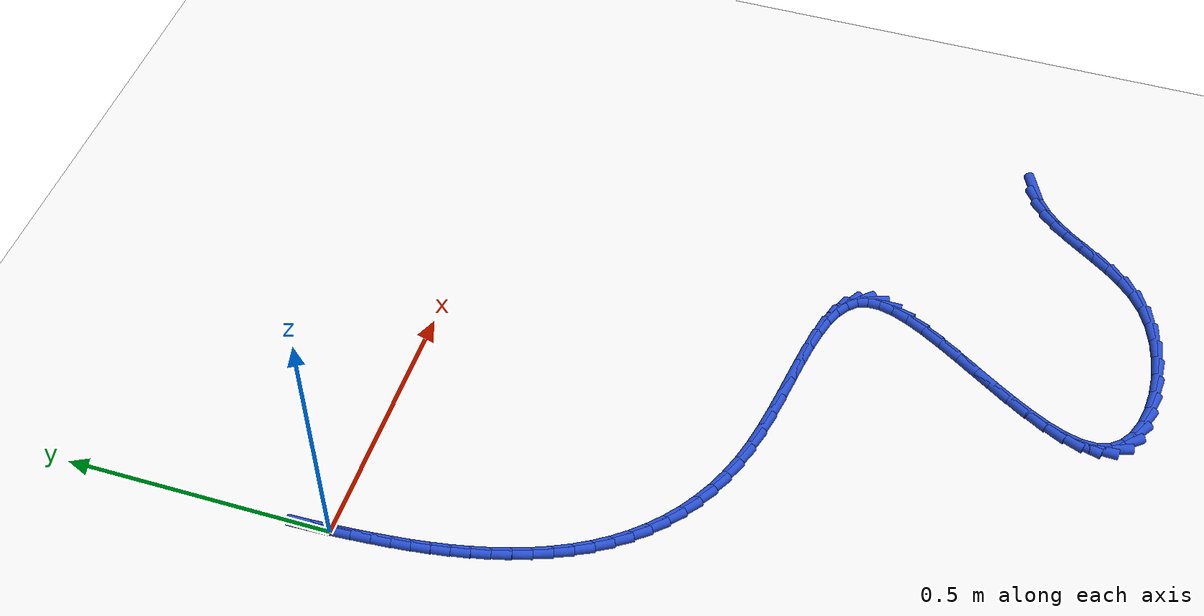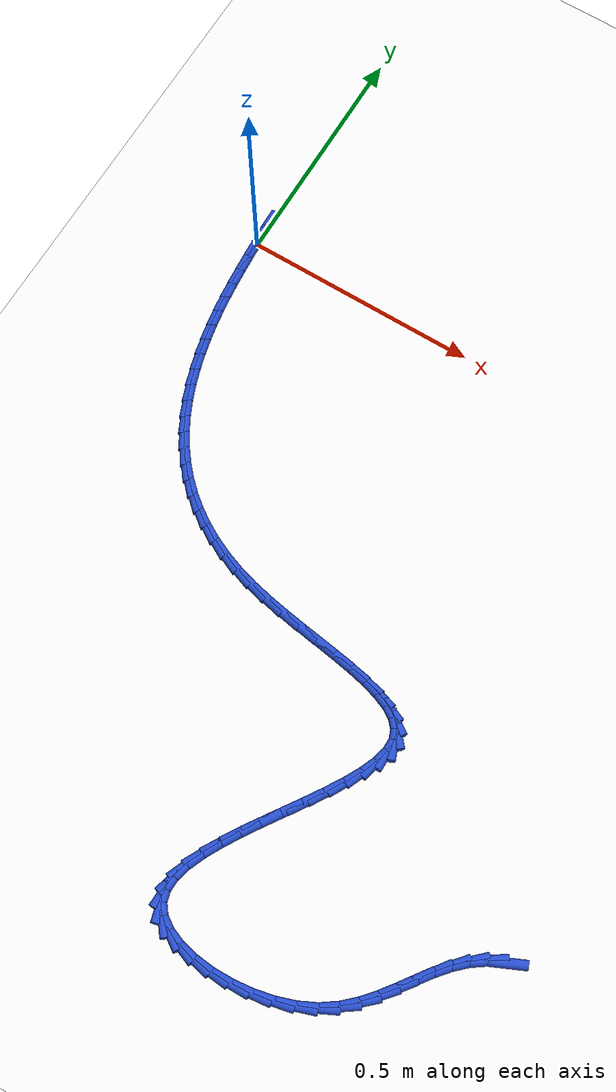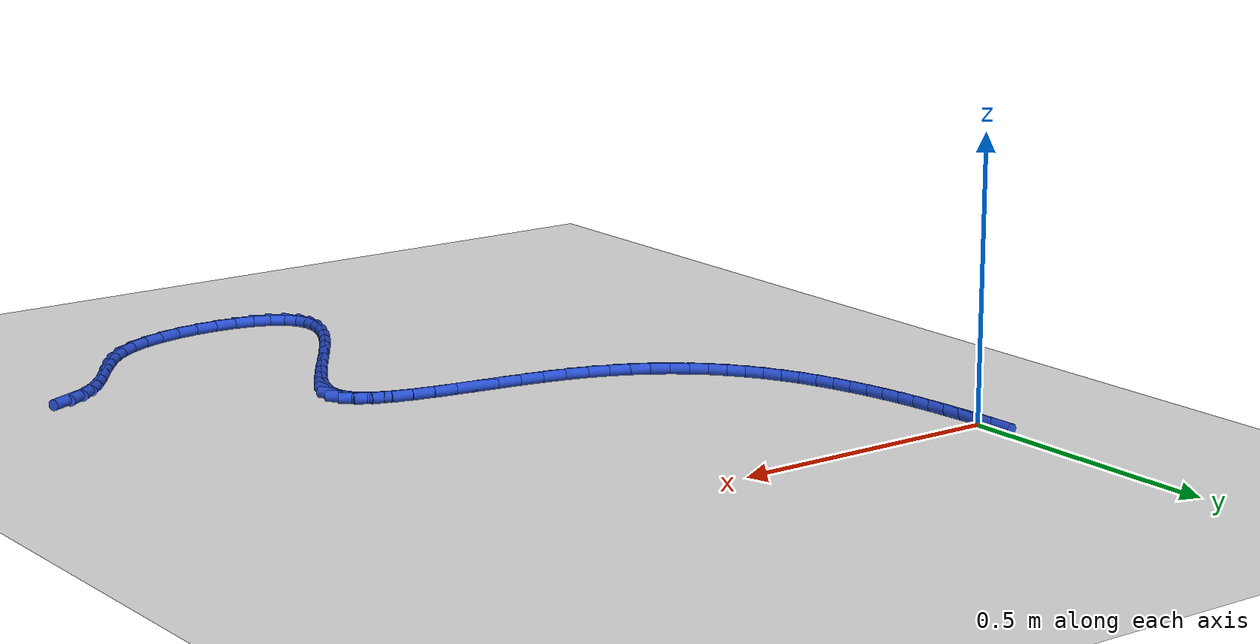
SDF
<sdf version="1.6">
 <world name="default">
  <model name="ground_plane">
   <static>1</static>
   <link name="link">
    <collision name="collision">
     <geometry><plane><normal>0 0 1</normal><size>100 100</size></plane></geometry>
     <surface><friction><ode><mu>100</mu><mu2>50</mu2></ode></friction></surface>
    </collision>
    <visual name="visual">
     <cast_shadows>0</cast_shadows>
     <geometry><plane><normal>0 0 1</normal><size>100 100</size></plane></geometry>
     <material>
      <script><uri>file://media/materials/scripts/gazebo.material</uri><name>Gazebo/WhiteGlow</name></script>
     </material>
    </visual>
   </link>
  </model>
  <model name="line">
   <link name="link_0">
    <pose>4.5536491244391186e-17 -6.938893903907228e-18 0.01 0 1.57 -1.516350426905177</pose>
    <collision name="collision">
     <geometry><cylinder><radius>0.01</radius><length>0.08</length></cylinder></geometry>
    </collision>
    <visual name="visual">
     <material>
      <script><name>Gazebo/Blue</name><uri>file://media/materials/scripts/gazebo.material</uri></script>
     </material>
     <geometry><cylinder><radius>0.01</radius><length>0.08</length></cylinder></geometry>
    </visual>
   </link>
   <link name="link_1">
    <pose>-0.0020344990138612793 0.03733041962966487 0.01 0 1.57 -1.5432978315503292</pose>
    <collision name="collision">
     <geometry><cylinder><radius>0.01</radius><length>0.08</length></cylinder></geometry>
    </collision>
    <visual name="visual">
     <material>
      <script><name>Gazebo/Blue</name><uri>file://media/materials/scripts/gazebo.material</uri></script>
     </material>
     <geometry><cylinder><radius>0.01</radius><length>0.08</length></cylinder></geometry>
    </visual>
   </link>
   <link name="link_220">
    <pose>1.1746658661336546 -1.0184772821129071 0.01 0 1.57 0.42981412778938677</pose>
    <collision name="collision">
     <geometry><cylinder><radius>0.01</radius><length>0.08</length></cylinder></geometry>
    </collision>
    <visual name="visual">
     <material>
      <script><name>Gazebo/Blue</name><uri>file://media/materials/scripts/gazebo.material</uri></script>
     </material>
     <geometry><cylinder><radius>0.01</radius><length>0.08</length></cylinder></geometry>
    </visual>
   </link>
   <link name="link_221">
    <pose>1.1427832902395163 -1.0330921297746105 0.01 0 1.57 0.6200325860546971</pose>
    <collision name="collision">
     <geometry><cylinder><radius>0.01</radius><length>0.08</length></cylinder></geometry>
    </collision>
    <visual name="visual">
     <material>
      <script><name>Gazebo/Blue</name><uri>file://media/materials/scripts/gazebo.material</uri></script>
     </material>
     <geometry><cylinder><radius>0.01</radius><length>0.08</length></cylinder></geometry>
    </visual>
   </link>
   <link name="link_222">
    <pose>1.115253894360986 -1.0527469677544712 0.01 0 1.57 0.7728745072608176</pose>
    <collision name="collision">
     <geometry><cylinder><radius>0.01</radius><length>0.08</length></cylinder></geometry>
    </collision>
    <visual name="visual">
     <material>
      <script><name>Gazebo/Blue</name><uri>file://media/materials/scripts/gazebo.material</uri></script>
     </material>
     <geometry><cylinder><radius>0.01</radius><length>0.08</length></cylinder></geometry>
    </visual>
   </link>
   <link name="link_223">
    <pose>1.0910106829512283 -1.0763904315548454 0.01 0 1.57 0.8788750984737931</pose>
    <collision name="collision">
     <geometry><cylinder><radius>0.01</radius><length>0.08</length></cylinder></geometry>
    </collision>
    <visual name="visual">
     <material>
      <script><name>Gazebo/Blue</name><uri>file://media/materials/scripts/gazebo.material</uri></script>
     </material>
     <geometry><cylinder><radius>0.01</radius><length>0.08</length></cylinder></geometry>
    </visual>
   </link>
   <link name="link_224">
    <pose>1.0689866604634077 -1.102971156678089 0.01 0 1.57 0.9381318744191648</pose>
    <collision name="collision">
     <geometry><cylinder><radius>0.01</radius><length>0.08</length></cylinder></geometry>
    </collision>
    <visual name="visual">
     <material>
      <script><name>Gazebo/Blue</name><uri>file://media/materials/scripts/gazebo.material</uri></script>
     </material>
     <geometry><cylinder><radius>0.01</radius><length>0.08</length></cylinder></geometry>
    </visual>
   </link>
   <link name="link_225">
    <pose>1.048114831350689 -1.1314377786265581 0.01 0 1.57 0.95378054812409</pose>
    <collision name="collision">
     <geometry><cylinder><radius>0.01</radius><length>0.08</length></cylinder></geometry>
    </collision>
    <visual name="visual">
     <material>
      <script><name>Gazebo/Blue</name><uri>file://media/materials/scripts/gazebo.material</uri></script>
     </material>
     <geometry><cylinder><radius>0.01</radius><length>0.08</length></cylinder></geometry>
    </visual>
   </link>
   <link name="link_226">
    <pose>1.0273282000662358 -1.1607389329026085 0.01 0 1.57 0.9282820474784721</pose>
    <collision name="collision">
     <geometry><cylinder><radius>0.01</radius><length>0.08</length></cylinder></geometry>
    </collision>
    <visual name="visual">
     <material>
      <script><name>Gazebo/Blue</name><uri>file://media/materials/scripts/gazebo.material</uri></script>
     </material>
     <geometry><cylinder><radius>0.01</radius><length>0.08</length></cylinder></geometry>
    </visual>
   </link>
   <link name="link_227">
    <pose>1.0055597710632138 -1.1898232550085968 0.01 0 1.57 0.8626919393653397</pose>
    <collision name="collision">
     <geometry><cylinder><radius>0.01</radius><length>0.08</length></cylinder></geometry>
    </collision>
    <visual name="visual">
     <material>
      <script><name>Gazebo/Blue</name><uri>file://media/materials/scripts/gazebo.material</uri></script>
     </material>
     <geometry><cylinder><radius>0.01</radius><length>0.08</length></cylinder></geometry>
    </visual>
   </link>
   <link name="link_228">
    <pose>0.9817425487947873 -1.2176393804468788 0.01 0 1.57 0.7580073721109306</pose>
    <collision name="collision">
     <geometry><cylinder><radius>0.01</radius><length>0.08</length></cylinder></geometry>
    </collision>
    <visual name="visual">
     <material>
      <script><name>Gazebo/Blue</name><uri>file://media/materials/scripts/gazebo.material</uri></script>
     </material>
     <geometry><cylinder><radius>0.01</radius><length>0.08</length></cylinder></geometry>
    </visual>
   </link>
   <link name="link_229">
    <pose>0.9548095377141208 -1.243135944719811 0.01 0 1.57 0.6181231570834209</pose>
    <collision name="collision">
     <geometry><cylinder><radius>0.01</radius><length>0.08</length></cylinder></geometry>
    </collision>
    <visual name="visual">
     <material>
      <script><name>Gazebo/Blue</name><uri>file://media/materials/scripts/gazebo.material</uri></script>
     </material>
     <geometry><cylinder><radius>0.01</radius><length>0.08</length></cylinder></geometry>
    </visual>
   </link>
   <link name="link_230">
    <pose>0.9236938849033245 -1.265261644098221 0.01 0 1.57 0.4635899827765623</pose>
    <collision name="collision">
     <geometry><cylinder><radius>0.01</radius><length>0.08</length></cylinder></geometry>
    </collision>
    <visual name="visual">
     <material>
      <script><name>Gazebo/Blue</name><uri>file://media/materials/scripts/gazebo.material</uri></script>
     </material>
     <geometry><cylinder><radius>0.01</radius><length>0.08</length></cylinder></geometry>
    </visual>
   </link>
   <link name="link_231">
    <pose>0.8878432404863427 -1.2831843839595214 0.01 0 1.57 0.3318450733381924</pose>
    <collision name="collision">
     <geometry><cylinder><radius>0.01</radius><length>0.08</length></cylinder></geometry>
    </collision>
    <visual name="visual">
     <material>
      <script><name>Gazebo/Blue</name><uri>file://media/materials/scripts/gazebo.material</uri></script>
     </material>
     <geometry><cylinder><radius>0.01</radius><length>0.08</length></cylinder></geometry>
    </visual>
   </link>
   <link name="link_232">
    <pose>0.8483765229039404 -1.2967841300671765 0.01 0 1.57 0.21983674136363643</pose>
    <collision name="collision">
     <geometry><cylinder><radius>0.01</radius><length>0.08</length></cylinder></geometry>
    </collision>
    <visual name="visual">
     <material>
      <script><name>Gazebo/Blue</name><uri>file://media/materials/scripts/gazebo.material</uri></script>
     </material>
     <geometry><cylinder><radius>0.01</radius><length>0.08</length></cylinder></geometry>
    </visual>
   </link>
   <link name="link_233">
    <pose>0.8067514077498625 -1.3060851790181263 0.01 0 1.57 0.11820709471856827</pose>
    <collision name="collision">
     <geometry><cylinder><radius>0.01</radius><length>0.08</length></cylinder></geometry>
    </collision>
    <visual name="visual">
     <material>
      <script><name>Gazebo/Blue</name><uri>file://media/materials/scripts/gazebo.material</uri></script>
     </material>
     <geometry><cylinder><radius>0.01</radius><length>0.08</length></cylinder></geometry>
    </visual>
   </link>
   <link name="link_234">
    <pose>0.7644255706178503 -1.311111827409309 0.01 0 1.57 0.018678733940590667</pose>
    <collision name="collision">
     <geometry><cylinder><radius>0.01</radius><length>0.08</length></cylinder></geometry>
    </collision>
    <visual name="visual">
     <material>
      <script><name>Gazebo/Blue</name><uri>file://media/materials/scripts/gazebo.material</uri></script>
     </material>
     <geometry><cylinder><radius>0.01</radius><length>0.08</length></cylinder></geometry>
    </visual>
   </link>
   <link name="link_235">
    <pose>0.7228566871016489 -1.3118883718376653 0.01 0 1.57 -0.08742310522896354</pose>
    <collision name="collision">
     <geometry><cylinder><radius>0.01</radius><length>0.08</length></cylinder></geometry>
    </collision>
    <visual name="visual">
     <material>
      <script><name>Gazebo/Blue</name><uri>file://media/materials/scripts/gazebo.material</uri></script>
     </material>
     <geometry><cylinder><radius>0.01</radius><length>0.08</length></cylinder></geometry>
    </visual>
   </link>
   <link name="link_236">
    <pose>0.6835024327950021 -1.3084391089001337 0.01 0 1.57 -0.21121770342048543</pose>
    <collision name="collision">
     <geometry><cylinder><radius>0.01</radius><length>0.08</length></cylinder></geometry>
    </collision>
    <visual name="visual">
     <material>
      <script><name>Gazebo/Blue</name><uri>file://media/materials/scripts/gazebo.material</uri></script>
     </material>
     <geometry><cylinder><radius>0.01</radius><length>0.08</length></cylinder></geometry>
    </visual>
   </link>
   <link name="link_237">
    <pose>0.6478204832916536 -1.3007883351936542 0.01 0 1.57 -0.3693740553438841</pose>
    <collision name="collision">
     <geometry><cylinder><radius>0.01</radius><length>0.08</length></cylinder></geometry>
    </collision>
    <visual name="visual">
     <material>
      <script><name>Gazebo/Blue</name><uri>file://media/materials/scripts/gazebo.material</uri></script>
     </material>
     <geometry><cylinder><radius>0.01</radius><length>0.08</length></cylinder></geometry>
    </visual>
   </link>
   <link name="link_238">
    <pose>0.6172685141853474 -1.288960347315166 0.01 0 1.57 -0.588138275045599</pose>
    <collision name="collision">
     <geometry><cylinder><radius>0.01</radius><length>0.08</length></cylinder></geometry>
    </collision>
    <visual name="visual">
     <material>
      <script><name>Gazebo/Blue</name><uri>file://media/materials/scripts/gazebo.material</uri></script>
     </material>
     <geometry><cylinder><radius>0.01</radius><length>0.08</length></cylinder></geometry>
    </visual>
   </link>
   <link name="link_239">
    <pose>0.5933042010698273 -1.272979441861609 0.01 0 1.57 -0.9011483518496011</pose>
    <collision name="collision">
     <geometry><cylinder><radius>0.01</radius><length>0.08</length></cylinder></geometry>
    </collision>
    <visual name="visual">
     <material>
      <script><name>Gazebo/Blue</name><uri>file://media/materials/scripts/gazebo.material</uri></script>
     </material>
     <geometry><cylinder><radius>0.01</radius><length>0.08</length></cylinder></geometry>
    </visual>
   </link>
   <link name="link_240">
    <pose>0.5773840454984881 -1.2528701447680108 0.01 0 1.57 -1.2857735743931757</pose>
    <collision name="collision">
     <geometry><cylinder><radius>0.01</radius><length>0.08</length></cylinder></geometry>
    </collision>
    <visual name="visual">
     <material>
      <script><name>Gazebo/Blue</name><uri>file://media/materials/scripts/gazebo.material</uri></script>
     </material>
     <geometry><cylinder><radius>0.01</radius><length>0.08</length></cylinder></geometry>
    </visual>
   </link>
   <link name="link_241">
    <pose>0.5703261216818103 -1.2287816929359083 0.01 0 1.57 1.5371134892160654</pose>
    <collision name="collision">
     <geometry><cylinder><radius>0.01</radius><length>0.08</length></cylinder></geometry>
    </collision>
    <visual name="visual">
     <material>
      <script><name>Gazebo/Blue</name><uri>file://media/materials/scripts/gazebo.material</uri></script>
     </material>
     <geometry><cylinder><radius>0.01</radius><length>0.08</length></cylinder></geometry>
    </visual>
   </link>
   <link name="link_242">
    <pose>0.5712557051690983 -1.201193996066931 0.01 0 1.57 1.3219169478094985</pose>
    <collision name="collision">
     <geometry><cylinder><radius>0.01</radius><length>0.08</length></cylinder></geometry>
    </collision>
    <visual name="visual">
     <material>
      <script><name>Gazebo/Blue</name><uri>file://media/materials/scripts/gazebo.material</uri></script>
     </material>
     <geometry><cylinder><radius>0.01</radius><length>0.08</length></cylinder></geometry>
    </visual>
   </link>
   <link name="link_243">
    <pose>0.5790206669384446 -1.1706411523190365 0.01 0 1.57 1.183652066104977</pose>
    <collision name="collision">
     <geometry><cylinder><radius>0.01</radius><length>0.08</length></cylinder></geometry>
    </collision>
    <visual name="visual">
     <material>
      <script><name>Gazebo/Blue</name><uri>file://media/materials/scripts/gazebo.material</uri></script>
     </material>
     <geometry><cylinder><radius>0.01</radius><length>0.08</length></cylinder></geometry>
    </visual>
   </link>
   <link name="link_244">
    <pose>0.5924688779679423 -1.1376572598501824 0.01 0 1.57 1.0948652347971406</pose>
    <collision name="collision">
     <geometry><cylinder><radius>0.01</radius><length>0.08</length></cylinder></geometry>
    </collision>
    <visual name="visual">
     <material>
      <script><name>Gazebo/Blue</name><uri>file://media/materials/scripts/gazebo.material</uri></script>
     </material>
     <geometry><cylinder><radius>0.01</radius><length>0.08</length></cylinder></geometry>
    </visual>
   </link>
   <link name="link_245">
    <pose>0.6104482092356841 -1.1027764168183265 0.01 0 1.57 1.038283411546175</pose>
    <collision name="collision">
     <geometry><cylinder><radius>0.01</radius><length>0.08</length></cylinder></geometry>
    </collision>
    <visual name="visual">
     <material>
      <script><name>Gazebo/Blue</name><uri>file://media/materials/scripts/gazebo.material</uri></script>
     </material>
     <geometry><cylinder><radius>0.01</radius><length>0.08</length></cylinder></geometry>
    </visual>
   </link>
   <link name="link_246">
    <pose>0.6318065317197631 -1.0665327213814257 0.01 0 1.57 1.0041894991324605</pose>
    <collision name="collision">
     <geometry><cylinder><radius>0.01</radius><length>0.08</length></cylinder></geometry>
    </collision>
    <visual name="visual">
     <material>
      <script><name>Gazebo/Blue</name><uri>file://media/materials/scripts/gazebo.material</uri></script>
     </material>
     <geometry><cylinder><radius>0.01</radius><length>0.08</length></cylinder></geometry>
    </visual>
   </link>
   <link name="link_247">
    <pose>0.6553917163982722 -1.0294602716974381 0.01 0 1.57 0.9874675375858653</pose>
    <collision name="collision">
     <geometry><cylinder><radius>0.01</radius><length>0.08</length></cylinder></geometry>
    </collision>
    <visual name="visual">
     <material>
      <script><name>Gazebo/Blue</name><uri>file://media/materials/scripts/gazebo.material</uri></script>
     </material>
     <geometry><cylinder><radius>0.01</radius><length>0.08</length></cylinder></geometry>
    </visual>
   </link>
   <link name="link_248">
    <pose>0.6800516342493033 -0.9920931659243223 0.01 0 1.57 0.985956388616077</pose>
    <collision name="collision">
     <geometry><cylinder><radius>0.01</radius><length>0.08</length></cylinder></geometry>
    </collision>
    <visual name="visual">
     <material>
      <script><name>Gazebo/Blue</name><uri>file://media/materials/scripts/gazebo.material</uri></script>
     </material>
     <geometry><cylinder><radius>0.01</radius><length>0.08</length></cylinder></geometry>
    </visual>
   </link>
   <link name="link_249">
    <pose>0.7046341562509508 -0.9549655022200326 0.01 0 1.57 0.9997997447959651</pose>
    <collision name="collision">
     <geometry><cylinder><radius>0.01</radius><length>0.08</length></cylinder></geometry>
    </collision>
    <visual name="visual">
     <material>
      <script><name>Gazebo/Blue</name><uri>file://media/materials/scripts/gazebo.material</uri></script>
     </material>
     <geometry><cylinder><radius>0.01</radius><length>0.08</length></cylinder></geometry>
    </visual>
   </link>
   <link name="link_250">
    <pose>0.7279871533813068 -0.9186113787425283 0.01 0 1.57 1.031564074763815</pose>
    <collision name="collision">
     <geometry><cylinder><radius>0.01</radius><length>0.08</length></cylinder></geometry>
    </collision>
    <visual name="visual">
     <material>
      <script><name>Gazebo/Blue</name><uri>file://media/materials/scripts/gazebo.material</uri></script>
     </material>
     <geometry><cylinder><radius>0.01</radius><length>0.08</length></cylinder></geometry>
    </visual>
   </link>
   <link name="link_251">
    <pose>0.7489584966184646 -0.8835648936497665 0.01 0 1.57 1.087229698293783</pose>
    <collision name="collision">
     <geometry><cylinder><radius>0.01</radius><length>0.08</length></cylinder></geometry>
    </collision>
    <visual name="visual">
     <material>
      <script><name>Gazebo/Blue</name><uri>file://media/materials/scripts/gazebo.material</uri></script>
     </material>
     <geometry><cylinder><radius>0.01</radius><length>0.08</length></cylinder></geometry>
    </visual>
   </link>
   <link name="link_252">
    <pose>0.7663960569405166 -0.8503601450997049 0.01 0 1.57 1.1785986417225092</pose>
    <collision name="collision">
     <geometry><cylinder><radius>0.01</radius><length>0.08</length></cylinder></geometry>
    </collision>
    <visual name="visual">
     <material>
      <script><name>Gazebo/Blue</name><uri>file://media/materials/scripts/gazebo.material</uri></script>
     </material>
     <geometry><cylinder><radius>0.01</radius><length>0.08</length></cylinder></geometry>
    </visual>
   </link>
   <link name="link_253">
    <pose>0.779147705325556 -0.819531231250301 0.01 0 1.57 1.3280484748059462</pose>
    <collision name="collision">
     <geometry><cylinder><radius>0.01</radius><length>0.08</length></cylinder></geometry>
    </collision>
    <visual name="visual">
     <material>
      <script><name>Gazebo/Blue</name><uri>file://media/materials/scripts/gazebo.material</uri></script>
     </material>
     <geometry><cylinder><radius>0.01</radius><length>0.08</length></cylinder></geometry>
    </visual>
   </link>
   <link name="link_254">
    <pose>0.7860613127516753 -0.7916122502595122 0.01 0 1.57 -1.5676681363368228</pose>
    <collision name="collision">
     <geometry><cylinder><radius>0.01</radius><length>0.08</length></cylinder></geometry>
    </collision>
    <visual name="visual">
     <material>
      <script><name>Gazebo/Blue</name><uri>file://media/materials/scripts/gazebo.material</uri></script>
     </material>
     <geometry><cylinder><radius>0.01</radius><length>0.08</length></cylinder></geometry>
    </visual>
   </link>
   <link name="link_255">
    <pose>0.7859847501969678 -0.7671373002852957 0.01 0 1.57 -1.2017244000804317</pose>
    <collision name="collision">
     <geometry><cylinder><radius>0.01</radius><length>0.08</length></cylinder></geometry>
    </collision>
    <visual name="visual">
     <material>
      <script><name>Gazebo/Blue</name><uri>file://media/materials/scripts/gazebo.material</uri></script>
     </material>
     <geometry><cylinder><radius>0.01</radius><length>0.08</length></cylinder></geometry>
    </visual>
   </link>
   <link name="link_256">
    <pose>0.7780084415034133 -0.7465158055303517 0.01 0 1.57 -0.8343913940553751</pose>
    <collision name="collision">
     <geometry><cylinder><radius>0.01</radius><length>0.08</length></cylinder></geometry>
    </collision>
    <visual name="visual">
     <material>
      <script><name>Gazebo/Blue</name><uri>file://media/materials/scripts/gazebo.material</uri></script>
     </material>
     <geometry><cylinder><radius>0.01</radius><length>0.08</length></cylinder></geometry>
    </visual>
   </link>
   <link name="link_257">
    <pose>0.7625572563443402 -0.7294712752293849 0.01 0 1.57 -0.565120895670289</pose>
    <collision name="collision">
     <geometry><cylinder><radius>0.01</radius><length>0.08</length></cylinder></geometry>
    </collision>
    <visual name="visual">
     <material>
      <script><name>Gazebo/Blue</name><uri>file://media/materials/scripts/gazebo.material</uri></script>
     </material>
     <geometry><cylinder><radius>0.01</radius><length>0.08</length></cylinder></geometry>
    </visual>
   </link>
   <link name="link_258">
    <pose>0.7405125447939668 -0.7154925843350528 0.01 0 1.57 -0.39045421343548375</pose>
    <collision name="collision">
     <geometry><cylinder><radius>0.01</radius><length>0.08</length></cylinder></geometry>
    </collision>
    <visual name="visual">
     <material>
      <script><name>Gazebo/Blue</name><uri>file://media/materials/scripts/gazebo.material</uri></script>
     </material>
     <geometry><cylinder><radius>0.01</radius><length>0.08</length></cylinder></geometry>
    </visual>
   </link>
   <link name="link_259">
    <pose>0.7127560558123968 -0.7040684027697367 0.01 0 1.57 -0.2803006529759465</pose>
    <collision name="collision">
     <geometry><cylinder><radius>0.01</radius><length>0.08</length></cylinder></geometry>
    </collision>
    <visual name="visual">
     <material>
      <script><name>Gazebo/Blue</name><uri>file://media/materials/scripts/gazebo.material</uri></script>
     </material>
     <geometry><cylinder><radius>0.01</radius><length>0.08</length></cylinder></geometry>
    </visual>
   </link>
   <link name="link_260">
    <pose>0.6801695383597333 -0.694687400455817 0.01 0 1.57 -0.21162367842931346</pose>
    <collision name="collision">
     <geometry><cylinder><radius>0.01</radius><length>0.08</length></cylinder></geometry>
    </collision>
    <visual name="visual">
     <material>
      <script><name>Gazebo/Blue</name><uri>file://media/materials/scripts/gazebo.material</uri></script>
     </material>
     <geometry><cylinder><radius>0.01</radius><length>0.08</length></cylinder></geometry>
    </visual>
   </link>
   <link name="link_261">
    <pose>0.6436347413960795 -0.6868382473156748 0.01 0 1.57 -0.17075529440356832</pose>
    <collision name="collision">
     <geometry><cylinder><radius>0.01</radius><length>0.08</length></cylinder></geometry>
    </collision>
    <visual name="visual">
     <material>
      <script><name>Gazebo/Blue</name><uri>file://media/materials/scripts/gazebo.material</uri></script>
     </material>
     <geometry><cylinder><radius>0.01</radius><length>0.08</length></cylinder></geometry>
    </visual>
   </link>
   <link name="link_262">
    <pose>0.6040334138815386 -0.6800096132716906 0.01 0 1.57 -0.15009574635270578</pose>
    <collision name="collision">
     <geometry><cylinder><radius>0.01</radius><length>0.08</length></cylinder></geometry>
    </collision>
    <visual name="visual">
     <material>
      <script><name>Gazebo/Blue</name><uri>file://media/materials/scripts/gazebo.material</uri></script>
     </material>
     <geometry><cylinder><radius>0.01</radius><length>0.08</length></cylinder></geometry>
    </visual>
   </link>
   <link name="link_263">
    <pose>0.5622473047762142 -0.6736901682462454 0.01 0 1.57 -0.14567030359148098</pose>
    <collision name="collision">
     <geometry><cylinder><radius>0.01</radius><length>0.08</length></cylinder></geometry>
    </collision>
    <visual name="visual">
     <material>
      <script><name>Gazebo/Blue</name><uri>file://media/materials/scripts/gazebo.material</uri></script>
     </material>
     <geometry><cylinder><radius>0.01</radius><length>0.08</length></cylinder></geometry>
    </visual>
   </link>
   <link name="link_264">
    <pose>0.5191581630402093 -0.6673685821617201 0.01 0 1.57 -0.1558167184308139</pose>
    <collision name="collision">
     <geometry><cylinder><radius>0.01</radius><length>0.08</length></cylinder></geometry>
    </collision>
    <visual name="visual">
     <material>
      <script><name>Gazebo/Blue</name><uri>file://media/materials/scripts/gazebo.material</uri></script>
     </material>
     <geometry><cylinder><radius>0.01</radius><length>0.08</length></cylinder></geometry>
    </visual>
   </link>
   <link name="link_265">
    <pose>0.4756477376336286 -0.6605335249404958 0.01 0 1.57 -0.1805862711081876</pose>
    <collision name="collision">
     <geometry><cylinder><radius>0.01</radius><length>0.08</length></cylinder></geometry>
    </collision>
    <visual name="visual">
     <material>
      <script><name>Gazebo/Blue</name><uri>file://media/materials/scripts/gazebo.material</uri></script>
     </material>
     <geometry><cylinder><radius>0.01</radius><length>0.08</length></cylinder></geometry>
    </visual>
   </link>
   <link name="link_266">
    <pose>0.4325977775165725 -0.6526736665049526 0.01 0 1.57 -0.2215825028873616</pose>
    <collision name="collision">
     <geometry><cylinder><radius>0.01</radius><length>0.08</length></cylinder></geometry>
    </collision>
    <visual name="visual">
     <material>
      <script><name>Gazebo/Blue</name><uri>file://media/materials/scripts/gazebo.material</uri></script>
     </material>
     <geometry><cylinder><radius>0.01</radius><length>0.08</length></cylinder></geometry>
    </visual>
   </link>
   <link name="link_267">
    <pose>0.3908900316491457 -0.6432776767774716 0.01 0 1.57 -0.2814217121672432</pose>
    <collision name="collision">
     <geometry><cylinder><radius>0.01</radius><length>0.08</length></cylinder></geometry>
    </collision>
    <visual name="visual">
     <material>
      <script><name>Gazebo/Blue</name><uri>file://media/materials/scripts/gazebo.material</uri></script>
     </material>
     <geometry><cylinder><radius>0.01</radius><length>0.08</length></cylinder></geometry>
    </visual>
   </link>
   <link name="link_268">
    <pose>0.35137452981468403 -0.6318539733478189 0.01 0 1.57 -0.35320808313300256</pose>
    <collision name="collision">
     <geometry><cylinder><radius>0.01</radius><length>0.08</length></cylinder></geometry>
    </collision>
    <visual name="visual">
     <material>
      <script><name>Gazebo/Blue</name><uri>file://media/materials/scripts/gazebo.material</uri></script>
     </material>
     <geometry><cylinder><radius>0.01</radius><length>0.08</length></cylinder></geometry>
    </visual>
   </link>
   <link name="link_269">
    <pose>0.3144004415418232 -0.6182227984722349 0.01 0 1.57 -0.4289239694837757</pose>
    <collision name="collision">
     <geometry><cylinder><radius>0.01</radius><length>0.08</length></cylinder></geometry>
    </collision>
    <visual name="visual">
     <material>
      <script><name>Gazebo/Blue</name><uri>file://media/materials/scripts/gazebo.material</uri></script>
     </material>
     <geometry><cylinder><radius>0.01</radius><length>0.08</length></cylinder></geometry>
    </visual>
   </link>
   <link name="link_270">
    <pose>0.2799174919665505 -0.6024530797704777 0.01 0 1.57 -0.5076963851937306</pose>
    <collision name="collision">
     <geometry><cylinder><radius>0.01</radius><length>0.08</length></cylinder></geometry>
    </collision>
    <visual name="visual">
     <material>
      <script><name>Gazebo/Blue</name><uri>file://media/materials/scripts/gazebo.material</uri></script>
     </material>
     <geometry><cylinder><radius>0.01</radius><length>0.08</length></cylinder></geometry>
    </visual>
   </link>
   <link name="link_271">
    <pose>0.24786429625968312 -0.5846206616842167 0.01 0 1.57 -0.5886876891415512</pose>
    <collision name="collision">
     <geometry><cylinder><radius>0.01</radius><length>0.08</length></cylinder></geometry>
    </collision>
    <visual name="visual">
     <material>
      <script><name>Gazebo/Blue</name><uri>file://media/materials/scripts/gazebo.material</uri></script>
     </material>
     <geometry><cylinder><radius>0.01</radius><length>0.08</length></cylinder></geometry>
    </visual>
   </link>
   <link name="link_272">
    <pose>0.21817946959203788 -0.5648013886551219 0.01 0 1.57 -0.6708986357305576</pose>
    <collision name="collision">
     <geometry><cylinder><radius>0.01</radius><length>0.08</length></cylinder></geometry>
    </collision>
    <visual name="visual">
     <material>
      <script><name>Gazebo/Blue</name><uri>file://media/materials/scripts/gazebo.material</uri></script>
     </material>
     <geometry><cylinder><radius>0.01</radius><length>0.08</length></cylinder></geometry>
    </visual>
   </link>
   <link name="link_273">
    <pose>0.1908016271344315 -0.5430711051248622 0.01 0 1.57 -0.7532353829787745</pose>
    <collision name="collision">
     <geometry><cylinder><radius>0.01</radius><length>0.08</length></cylinder></geometry>
    </collision>
    <visual name="visual">
     <material>
      <script><name>Gazebo/Blue</name><uri>file://media/materials/scripts/gazebo.material</uri></script>
     </material>
     <geometry><cylinder><radius>0.01</radius><length>0.08</length></cylinder></geometry>
    </visual>
   </link>
   <link name="link_274">
    <pose>0.1656693840576809 -0.5195056555351076 0.01 0 1.57 -0.83459408652352</pose>
    <collision name="collision">
     <geometry><cylinder><radius>0.01</radius><length>0.08</length></cylinder></geometry>
    </collision>
    <visual name="visual">
     <material>
      <script><name>Gazebo/Blue</name><uri>file://media/materials/scripts/gazebo.material</uri></script>
     </material>
     <geometry><cylinder><radius>0.01</radius><length>0.08</length></cylinder></geometry>
    </visual>
   </link>
   <link name="link_275">
    <pose>0.14272135553260276 -0.4941808843275271 0.01 0 1.57 -0.9139474160616523</pose>
    <collision name="collision">
     <geometry><cylinder><radius>0.01</radius><length>0.08</length></cylinder></geometry>
    </collision>
    <visual name="visual">
     <material>
      <script><name>Gazebo/Blue</name><uri>file://media/materials/scripts/gazebo.material</uri></script>
     </material>
     <geometry><cylinder><radius>0.01</radius><length>0.08</length></cylinder></geometry>
    </visual>
   </link>
   <link name="link_276">
    <pose>0.12189615673001405 -0.4671726359437903 0.01 0 1.57 -0.9904166706747574</pose>
    <collision name="collision">
     <geometry><cylinder><radius>0.01</radius><length>0.08</length></cylinder></geometry>
    </collision>
    <visual name="visual">
     <material>
      <script><name>Gazebo/Blue</name><uri>file://media/materials/scripts/gazebo.material</uri></script>
     </material>
     <geometry><cylinder><radius>0.01</radius><length>0.08</length></cylinder></geometry>
    </visual>
   </link>
   <link name="link_277">
    <pose>0.10313240282073152 -0.43855675482556694 0.01 0 1.57 -1.0632810410632354</pose>
    <collision name="collision">
     <geometry><cylinder><radius>0.01</radius><length>0.08</length></cylinder></geometry>
    </collision>
    <visual name="visual">
     <material>
      <script><name>Gazebo/Blue</name><uri>file://media/materials/scripts/gazebo.material</uri></script>
     </material>
     <geometry><cylinder><radius>0.01</radius><length>0.08</length></cylinder></geometry>
    </visual>
   </link>
   <link name="link_278">
    <pose>0.08636826728247426 -0.40841091344074554 0.01 0 1.57 -1.1305483200035418</pose>
    <collision name="collision">
     <geometry><cylinder><radius>0.01</radius><length>0.08</length></cylinder></geometry>
    </collision>
    <visual name="visual">
     <material>
      <script><name>Gazebo/Blue</name><uri>file://media/materials/scripts/gazebo.material</uri></script>
     </material>
     <geometry><cylinder><radius>0.01</radius><length>0.08</length></cylinder></geometry>
    </visual>
   </link>
   <link name="link_279">
    <pose>0.07152191631447043 -0.3768955879728439 0.01 0 1.57 -1.1904383408673083</pose>
    <collision name="collision">
     <geometry><cylinder><radius>0.01</radius><length>0.08</length></cylinder></geometry>
    </collision>
    <visual name="visual">
     <material>
      <script><name>Gazebo/Blue</name><uri>file://media/materials/scripts/gazebo.material</uri></script>
     </material>
     <geometry><cylinder><radius>0.01</radius><length>0.08</length></cylinder></geometry>
    </visual>
   </link>
   <link name="link_280">
    <pose>0.05848375445985356 -0.3442861512055218 0.01 0 1.57 -1.2436235739244301</pose>
    <collision name="collision">
     <geometry><cylinder><radius>0.01</radius><length>0.08</length></cylinder></geometry>
    </collision>
    <visual name="visual">
     <material>
      <script><name>Gazebo/Blue</name><uri>file://media/materials/scripts/gazebo.material</uri></script>
     </material>
     <geometry><cylinder><radius>0.01</radius><length>0.08</length></cylinder></geometry>
    </visual>
   </link>
   <link name="link_281">
    <pose>0.04714214134145548 -0.31086643919239576 0.01 0 1.57 -1.2909230653597832</pose>
    <collision name="collision">
     <geometry><cylinder><radius>0.01</radius><length>0.08</length></cylinder></geometry>
    </collision>
    <visual name="visual">
     <material>
      <script><name>Gazebo/Blue</name><uri>file://media/materials/scripts/gazebo.material</uri></script>
     </material>
     <geometry><cylinder><radius>0.01</radius><length>0.08</length></cylinder></geometry>
    </visual>
   </link>
   <link name="link_282">
    <pose>0.03738543658210933 -0.27692028798708584 0.01 0 1.57 -1.3330915182721679</pose>
    <collision name="collision">
     <geometry><cylinder><radius>0.01</radius><length>0.08</length></cylinder></geometry>
    </collision>
    <visual name="visual">
     <material>
      <script><name>Gazebo/Blue</name><uri>file://media/materials/scripts/gazebo.material</uri></script>
     </material>
     <geometry><cylinder><radius>0.01</radius><length>0.08</length></cylinder></geometry>
    </visual>
   </link>
   <link name="link_283">
    <pose>0.029101999804647737 -0.2427315336432112 0.01 0 1.57 -1.3708038727383571</pose>
    <collision name="collision">
     <geometry><cylinder><radius>0.01</radius><length>0.08</length></cylinder></geometry>
    </collision>
    <visual name="visual">
     <material>
      <script><name>Gazebo/Blue</name><uri>file://media/materials/scripts/gazebo.material</uri></script>
     </material>
     <geometry><cylinder><radius>0.01</radius><length>0.08</length></cylinder></geometry>
    </visual>
   </link>
   <link name="link_284">
    <pose>0.02218010738582253 -0.20858344290359918 0.01 0 1.57 -1.4047368349738911</pose>
    <collision name="collision">
     <geometry><cylinder><radius>0.01</radius><length>0.08</length></cylinder></geometry>
    </collision>
    <visual name="visual">
     <material>
      <script><name>Gazebo/Blue</name><uri>file://media/materials/scripts/gazebo.material</uri></script>
     </material>
     <geometry><cylinder><radius>0.01</radius><length>0.08</length></cylinder></geometry>
    </visual>
   </link>
   <link name="link_285">
    <pose>0.016487220854869648 -0.17461693205818646 0.01 0 1.57 -1.4349264171558405</pose>
    <collision name="collision">
     <geometry><cylinder><radius>0.01</radius><length>0.08</length></cylinder></geometry>
    </collision>
    <visual name="visual">
     <material>
      <script><name>Gazebo/Blue</name><uri>file://media/materials/scripts/gazebo.material</uri></script>
     </material>
     <geometry><cylinder><radius>0.01</radius><length>0.08</length></cylinder></geometry>
    </visual>
   </link>
   <link name="link_286">
    <pose>0.011842700241961273 -0.1406439565351384 0.01 0 1.57 -1.4606578403006987</pose>
    <collision name="collision">
     <geometry><cylinder><radius>0.01</radius><length>0.08</length></cylinder></geometry>
    </collision>
    <visual name="visual">
     <material>
      <script><name>Gazebo/Blue</name><uri>file://media/materials/scripts/gazebo.material</uri></script>
     </material>
     <geometry><cylinder><radius>0.01</radius><length>0.08</length></cylinder></geometry>
    </visual>
   </link>
   <link name="link_287">
    <pose>0.008059131698558751 -0.10643014595112522 0.01 0 1.57 -1.481380774569518</pose>
    <collision name="collision">
     <geometry><cylinder><radius>0.01</radius><length>0.08</length></cylinder></geometry>
    </collision>
    <visual name="visual">
     <material>
      <script><name>Gazebo/Blue</name><uri>file://media/materials/scripts/gazebo.material</uri></script>
     </material>
     <geometry><cylinder><radius>0.01</radius><length>0.08</length></cylinder></geometry>
    </visual>
   </link>
   <link name="link_288">
    <pose>0.004949101376123467 -0.07174112992281752 0.01 0 1.57 -1.496807053500777</pose>
    <collision name="collision">
     <geometry><cylinder><radius>0.01</radius><length>0.08</length></cylinder></geometry>
    </collision>
    <visual name="visual">
     <material>
      <script><name>Gazebo/Blue</name><uri>file://media/materials/scripts/gazebo.material</uri></script>
     </material>
     <geometry><cylinder><radius>0.01</radius><length>0.08</length></cylinder></geometry>
    </visual>
   </link>
   <link name="link_289">
    <pose>0.002325195426116781 -0.036342538066885706 0.01 0 1.57 -1.5069034168139628</pose>
    <collision name="collision">
     <geometry><cylinder><radius>0.01</radius><length>0.08</length></cylinder></geometry>
    </collision>
    <visual name="visual">
     <material>
      <script><name>Gazebo/Blue</name><uri>file://media/materials/scripts/gazebo.material</uri></script>
     </material>
     <geometry><cylinder><radius>0.01</radius><length>0.08</length></cylinder></geometry>
    </visual>
   </link>
   <link name="link_290">
    <pose>6.158268339717665e-17 -2.220446049250313e-16 0.01 0 1.57 -1.5118601732027486</pose>
    <collision name="collision">
     <geometry><cylinder><radius>0.01</radius><length>0.08</length></cylinder></geometry>
    </collision>
    <visual name="visual">
     <material>
      <script><name>Gazebo/Blue</name><uri>file://media/materials/scripts/gazebo.material</uri></script>
     </material>
     <geometry><cylinder><radius>0.01</radius><length>0.08</length></cylinder></geometry>
    </visual>
   </link>
  </model>
 </world>
</sdf>
